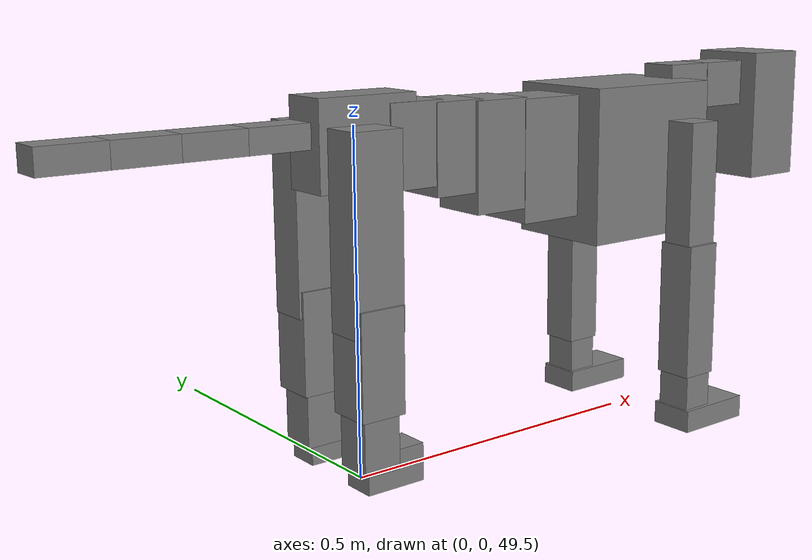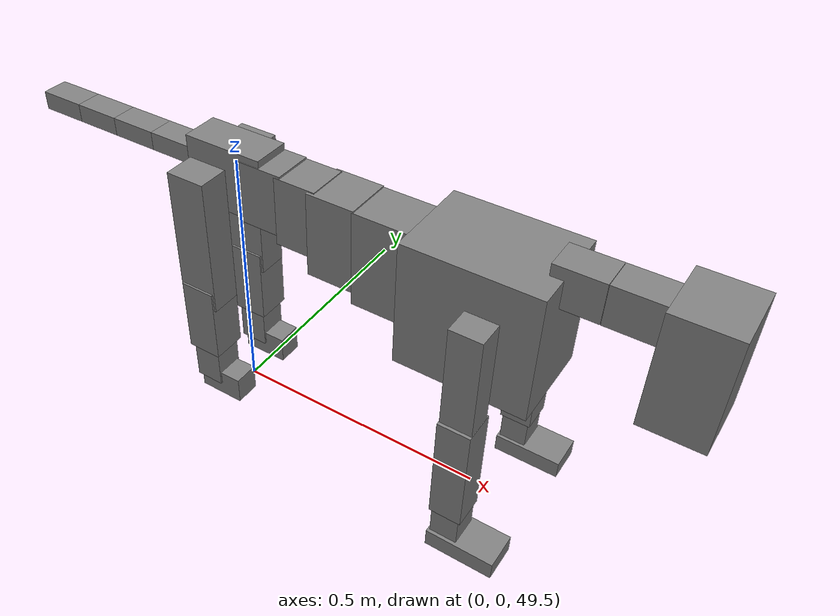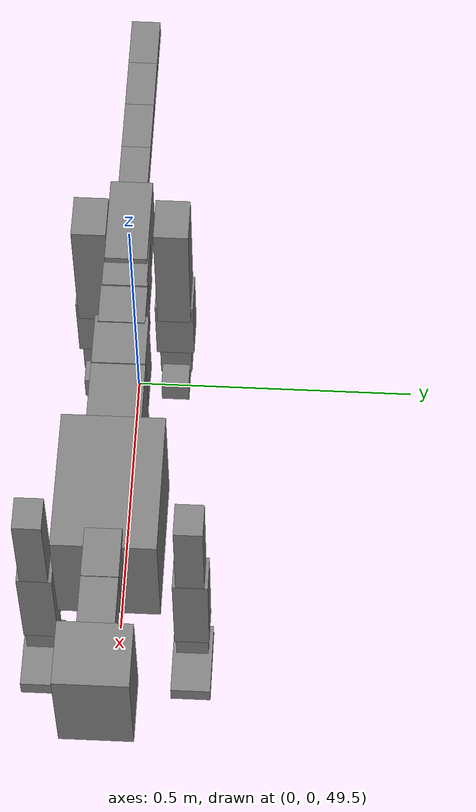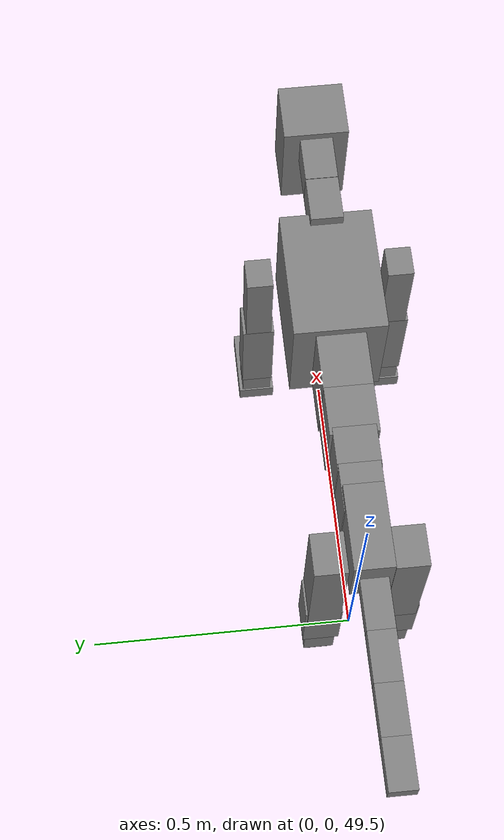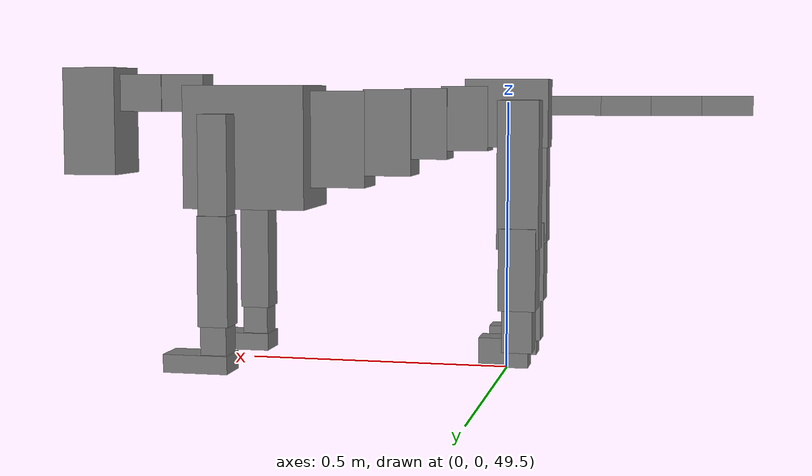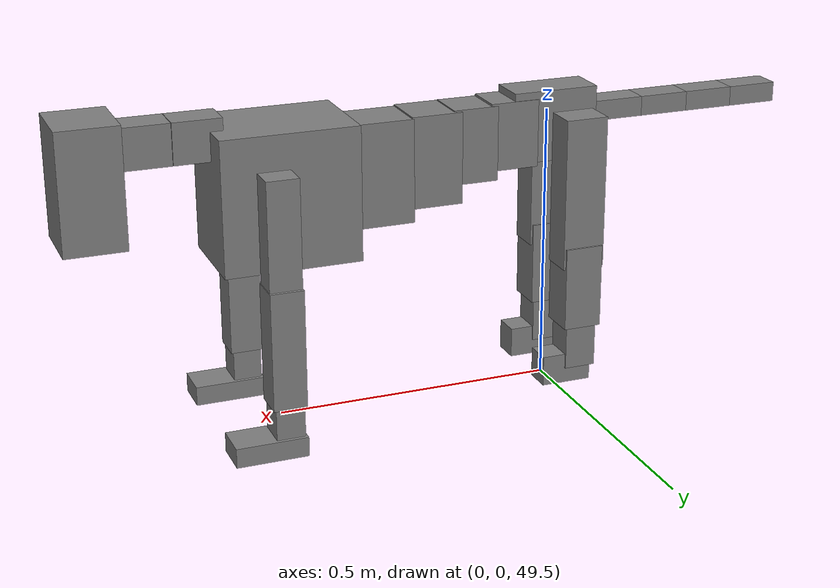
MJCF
<mujoco model="dog">

    <default>
        <joint armature="0.02" stiffness="1" damping="0.2" limited="true"/>
        <geom condim="3" friction="1 0.05 0.05" margin="0.01"/>
        <motor ctrllimited="true" ctrlrange="-1.0 1.0" forcelimited="true" gear="50"/>
    </default>

    <compiler inertiafromgeom="true" angle="radian"/>

    <option timestep="0.016" iterations="50" tolerance="1e-10" solver="Newton" jacobian="dense" cone="pyramidal"/>

    <size nconmax="20000" njmax="60000" nstack="5000000"/>
    <visual>
        <map force="0.1" zfar="30"/>
        <rgba haze="0.15 0.25 0.35 1"/>
        <quality shadowsize="2048"/>
        <global offwidth="800" offheight="800"/>
    </visual>

    <asset>
        <texture type="skybox" builtin="gradient" rgb1="0.3 0.5 0.7" rgb2="0 0 0" width="512" height="512"/>
        <texture name="texplane" type="2d" builtin="checker" rgb1=".2 .3 .4" rgb2=".1 0.15 0.2" width="512" height="512"
                 mark="cross" markrgb=".8 .8 .8"/>
        <texture name="texgeom" type="cube" builtin="flat" mark="cross" width="127" height="1278" rgb1="0.8 0.6 0.4"
                 rgb2="0.8 0.6 0.4" markrgb="1 1 1" random="0.01"/>

        <material name="matplane" reflectance="0.3" texture="texplane" texrepeat="1 1" texuniform="true"/>
        <material name="matgeom" texture="texgeom" texuniform="true" rgba="0.8 0.6 .4 1"/>
    </asset>

    <worldbody>
        <geom name="floor" pos="0 0 0" size="0 0 .25" type="plane" material="matplane" condim="3"/>

        <light directional="false" diffuse=".2 .2 .2" specular="0 0 0" pos="0 0 5" dir="0 0 -1" castshadow="false"/>
        <light mode="targetbodycom" target="torso" directional="false" diffuse=".8 .8 .8" specular="0.3 0.3 0.3"
               pos="0 0 4.0" dir="0 0 -1"/>

        <body name="root" pos="0 0 50">
            <freejoint name="root_1"/>
            <geom type="box" pos="0 0 -0.02" size="0.0774  0.0358  0.063" density="2030"/>

            <body name="spine1" pos="0.054 0 0">
                <joint name="spine1_y" axis="0 1 0" range="0 0.7" limited="true"/>
                <geom type="box" pos="0.02375 0 -0.03" size="0.04375  0.0375  0.05985" density="2030"/>

                <body name="spine2" pos="0.0612 0 0">
                    <joint name="spine2_y" axis="0 1 0" range="-0.15 0.15" limited="true"/>
                    <geom type="box" pos="0.03555  0  -0.04" size="0.04055  0.039  0.06615" density="2030"/>

                    <body name="spine3" pos="0.0730 0 0">
                        <joint name="spine3_y" axis="0 1 0" range="-0.15 0.15" limited="true"/>
                        <geom type="box" pos="0.03555  0  -0.057" size="0.04555  0.0445  0.081" density="2030"/>

                        <body name="spine4" pos="0.0780 0 0">
                            <joint name="spine4_y" axis="0 1 0" range="-0.15 0.15" limited="true"/>
                            <geom type="box" pos="0.05265  0  -0.07" size="0.05265  0.045  0.09135" density="2030"/>

                            <body name="torso" pos="0.1082 0 0">
                                <joint name="torso_y" axis="0 1 0" range="-0.15 0.15" limited="true"/>
                                <geom type="box" pos="0.11925  0  -0.085" size="0.11925  0.085  0.11745"
                                      density="2030"/>

                                <body name="neck1" pos="0.2160  0   0.0180">
                                    <joint name="neck1_y" axis="0 1 0" range="-1.2  -1" limited="true"/>
                                    <geom type="box" pos="0.0423  0  0" size="0.0423  0.03  0.036" density="2325"/>

                                    <body name="neck2" pos="0.0853  0  0">
                                        <joint name="neck2_y" axis="0 1 0" range="0.1  0" limited="true"/>
                                        <geom type="box" pos="0.0423  0  0" size="0.0423  0.03  0.036" density="2325"/>

                                        <body name="head" pos="0.0853  0  0">
                                            <joint name="head_y" axis="0 1 0" range="-0.3  -0.2" limited="true"/>
                                            <geom type="box" pos="0.0531  0  -0.055" size="0.0531  0.06  0.1044"
                                                  density="4030"/>

                                        </body>
                                    </body>
                                </body>

                                <body name="front_shoulder" pos="0.156  0   -0.0480">
                                    <joint name="front_shoulder_y" axis="0 1 0" range="-1 1.5" limited="true"/>
                                    <geom type="box" pos="0 0.13 -0.0809" size="0.0282  0.0241  0.1075" density="1158"/>
                                    <geom type="box" pos="0 -0.13 -0.0809" size="0.0282  0.0241  0.1075"
                                          density="1158"/>

                                    <body name="front_elbow" pos="0  0  -0.1617">
                                        <joint name="front_elbow_y" axis="0 1 0" range="-2 0" limited="true"/>
                                        <geom type="box" pos="0 0.13 -0.1037" size="0.0291  0.0298  0.1037"
                                              density="1081"/>
                                        <geom type="box" pos="0 -0.13 -0.1037" size="0.0291  0.0298  0.1037"
                                              density="1081"/>

                                        <body name="front_wrist" pos="0  0  -0.2074">
                                            <joint name="front_wrist_y" axis="0 1 0" range="-0.2 0" limited="true"/>
                                            <geom type="box" pos="0 0.13 -0.0341" size="0.0250  0.0278  0.0472"
                                                  density="1664"/>
                                            <geom type="box" pos="0 -0.13 -0.0341" size="0.0250  0.0278  0.0472"
                                                  density="1664"/>

                                            <body name="front_finger_end" pos="0  0  -0.0682">
                                                <joint name="front_finger_y" axis="0 1 0" range="-0.4 1"
                                                       limited="true"/>
                                                <geom type="box" pos="0.0342  0.13  -0.0022"
                                                      size="0.0627  0.0342  0.0172" density="1515"/>
                                                <geom type="box" pos="0.0342  -0.13  -0.0022"
                                                      size="0.0627  0.0342  0.0172" density="1515"/>

                                            </body>

                                        </body>
                                    </body>
                                </body>

                            </body>
                        </body>
                    </body>
                </body>
            </body>

            <body name="back_hip" pos="-0.03 0 -0.018">
                <joint name="back_hip_y" axis="0 1 0" range="-1.5 0.3" limited="true"/>
                <geom type="box" pos="0 0.07 -0.1126" size="0.0379  0.0297  0.1354" density="1154"/>
                <geom type="box" pos="0 -0.07 -0.1126" size="0.0379  0.0297  0.1354" density="1154"/>

                <body name="back_knee" pos="0  0  -0.2253">
                    <joint name="back_knee_y" axis="0 1 0" range="0 2.8" limited="true"/>
                    <geom type="box" pos="0 0.07 -0.0595" size="0.0341  0.0336  0.0750" density="1227"/>
                    <geom type="box" pos="0 -0.07 -0.0595" size="0.0341  0.0336  0.0750" density="1227"/>

                    <body name="back_ankle" pos="0  0  -0.1189">
                        <joint name="back_ankle_y" axis="0 1 0" range="-2.2 0" limited="true"/>
                        <geom type="box" pos="0 0.07 -0.0410" size="0.0281  0.0281  0.0523" density="1284"/>
                        <geom type="box" pos="0 -0.07 -0.0410" size="0.0281  0.0281  0.0523" density="1284"/>

                        <body name="back_toe_end" pos="0  0  -0.0821">
                            <joint name="back_toe_y" axis="0 1 0" range="-0.4 1" limited="true"/>
                            <geom type="box" pos="0.0247  0.07  -0.0120" size="0.0453  0.0247  0.0270" density="1515"/>
                            <geom type="box" pos="0.0247  -0.07  -0.0120" size="0.0453  0.0247  0.0270" density="1515"/>

                        </body>
                    </body>
                </body>
            </body>

            <body name="tail1" pos="-0.074 0 -0.006">
                <joint name="tail1_y" axis="0 1 0" range="-0.2 0.2" limited="true"/>
                <geom type="box" pos="-0.0536  0  0" size="0.045  0.025  0.0175" density="1587"/>

                <body name="tail2" pos="-0.09 0 0">
                    <joint name="tail2_y" axis="0 1 0" range="-0.2 0.2" limited="true"/>
                    <geom type="box" pos="-0.0536  0  0" size="0.045  0.025  0.0175" density="1587"/>

                    <body name="tail3" pos="-0.09 0 0">
                        <joint name="tail3_y" axis="0 1 0" range="-0.2 0.2" limited="true"/>
                        <geom type="box" pos="-0.0536  0  0" size="0.045  0.025  0.0175" density="1587"/>

                        <body name="tail4" pos="-0.09 0 0">
                            <joint name="tail4_y" axis="0 1 0" range="-0.2 0.2" limited="true"/>
                            <geom type="box" pos="-0.0536  0  0" size="0.045  0.025  0.0175" density="1587"/>

                        </body>
                    </body>
                </body>
            </body>
        </body>
    </worldbody>

    <actuator>
        <motor joint="spine1_y" forcerange="-150 150     "/>
        <motor joint="spine2_y" forcerange="-150 150     "/>
        <motor joint="spine3_y" forcerange="-150 150     "/>
        <motor joint="spine4_y" forcerange="-150 150     "/>
        <motor joint="torso_y" forcerange="-150 150     "/>
        <motor joint="neck1_y" forcerange="-100 100       "/>
        <motor joint="neck2_y" forcerange="-100 100       "/>
        <motor joint="head_y" forcerange="-150 150       "/>
        <motor joint="front_shoulder_y" forcerange="-120.62 139.96"/>
        <motor joint="front_elbow_y" forcerange="-189.83 126.79"/>
        <motor joint="front_wrist_y" forcerange="-73.56 148.61"/>
        <motor joint="front_finger_y" forcerange="-51.99 90.35"/>
        <motor joint="back_hip_y" forcerange="-345.31 250.86"/>
        <motor joint="back_knee_y" forcerange="-328.91 360.01"/>
        <motor joint="back_angle_y" forcerange="-166.47 182.67"/>
        <motor joint="back_toe_y" forcerange="-78.17 39.62"/>
        <motor joint="tail1_y" forcerange="-50 50     "/>
        <motor joint="tail2_y" forcerange="-50 50     "/>
        <motor joint="tail3_y" forcerange="-50 50     "/>
        <motor joint="tail4_y" forcerange="-50 50     "/>
    </actuator>
</mujoco>
